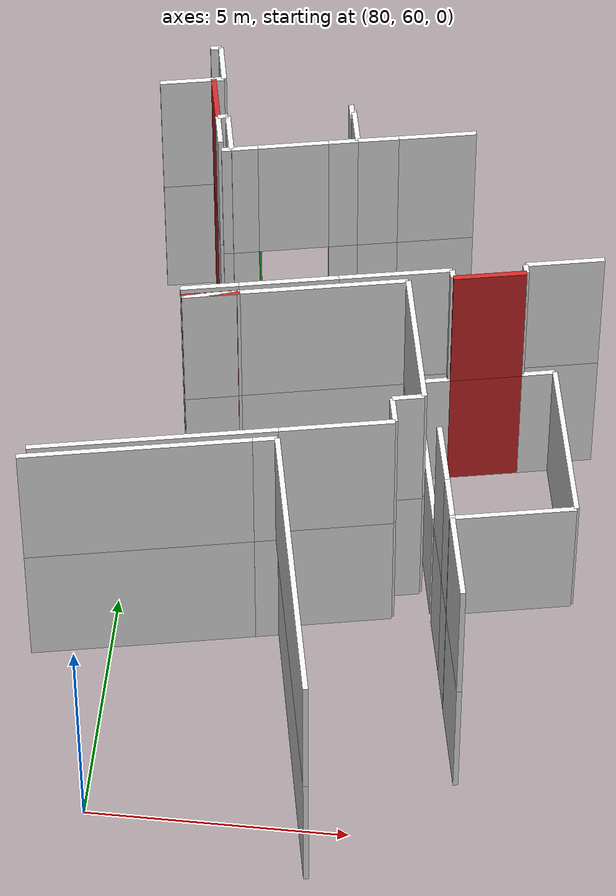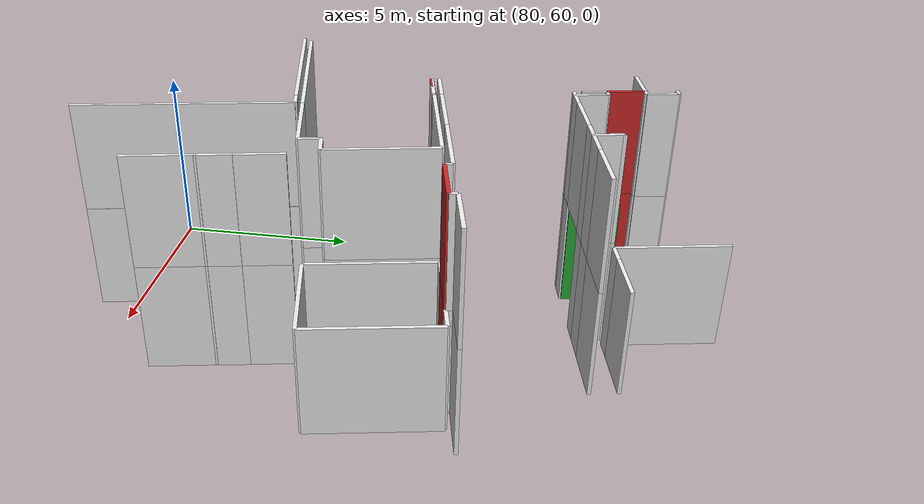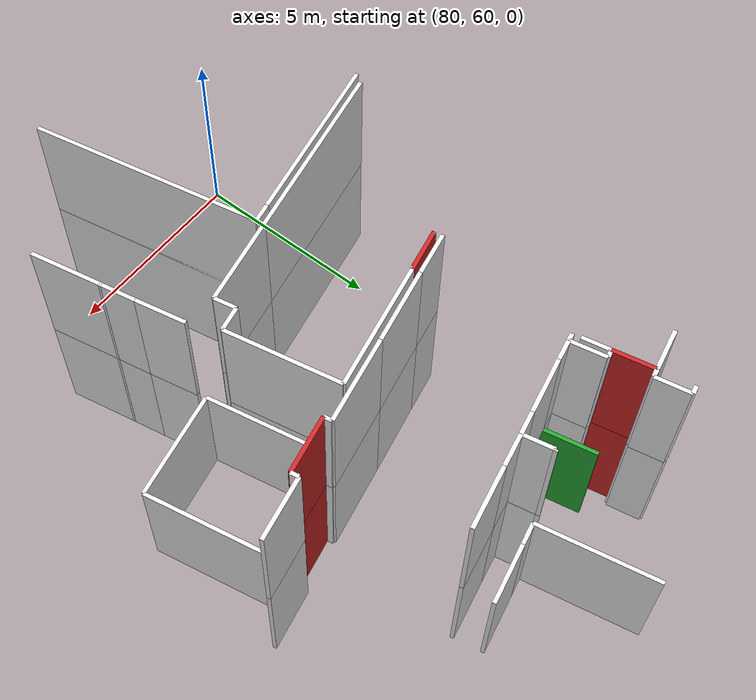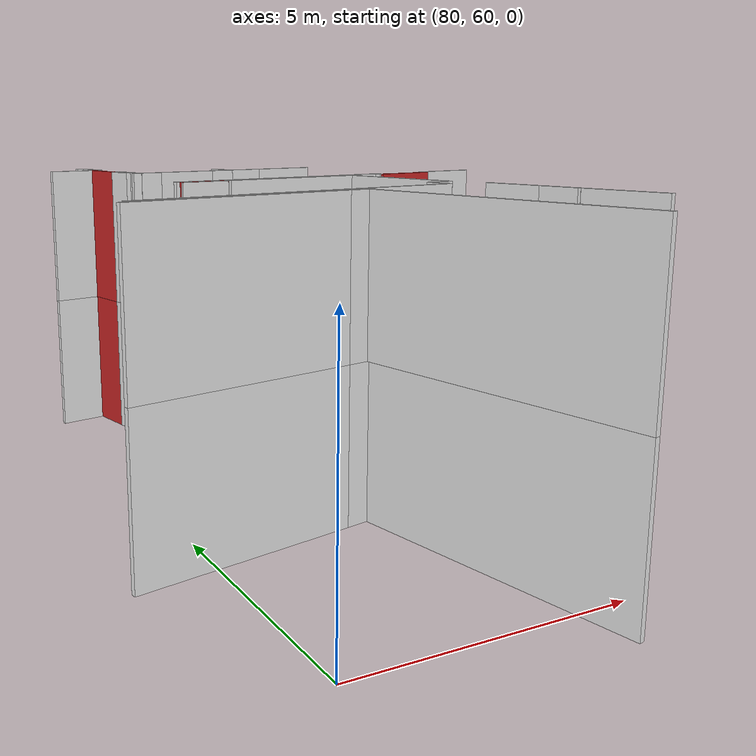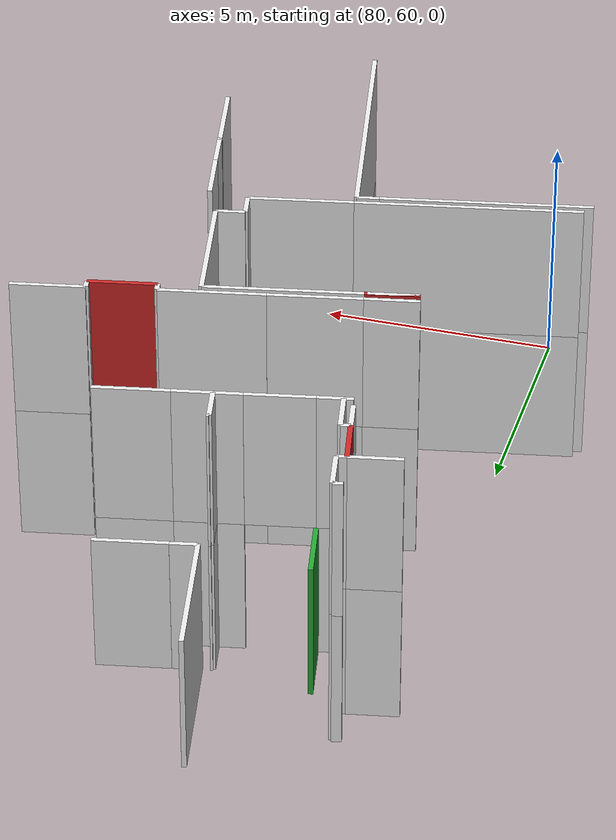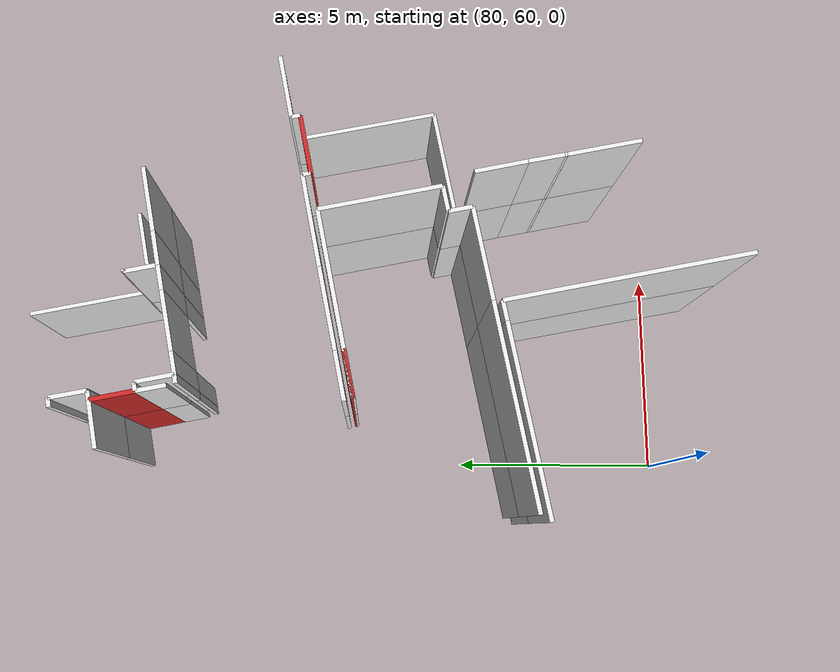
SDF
<sdf version="1.6">
 <world name="default">
  <model name="wall_81.1_72.9_1.5">
   <static>true</static>
   <pose>81.05000000001746 72.92000000015832 1.5 0 0 1.7721134351846652</pose>
   <link name="link">
    <visual name="visual">
     <geometry><box><size>1.0001999799880765 0.1 3</size></box></geometry>
     <material>
      <script><uri>file://media/materials/scripts/gazebo.material</uri><name>Gazebo/Red</name></script>
     </material>
    </visual>
    <collision name="collision"><geometry><box><size>1.0001999799880765 0.1 3</size></box></geometry></collision>
   </link>
  </model>
  <model name="wall_81.6_67.9_1.5">
   <static>true</static>
   <pose>81.55000000001746 67.88999999989755 1.5 0 0 0.2009542638673007</pose>
   <link name="link">
    <visual name="visual">
     <geometry><box><size>1.1021796587332557 0.1 3</size></box></geometry>
     <material>
      <script><uri>file://media/materials/scripts/gazebo.material</uri><name>Gazebo/Red</name></script>
     </material>
    </visual>
    <collision name="collision"><geometry><box><size>1.1021796587332557 0.1 3</size></box></geometry></collision>
   </link>
  </model>
  <model name="wall_86.7_68.9_1.5">
   <static>true</static>
   <pose>86.74499999999534 68.91499999980442 1.5 0 0 0.194586578487565</pose>
   <link name="link">
    <visual name="visual">
     <geometry><box><size>1.3963523910522369 0.1 3</size></box></geometry>
     <material>
      <script><uri>file://media/materials/scripts/gazebo.material</uri><name>Gazebo/Red</name></script>
     </material>
    </visual>
    <collision name="collision"><geometry><box><size>1.3963523910522369 0.1 3</size></box></geometry></collision>
   </link>
  </model>
  <model name="wall_81.9_72.4_1.5">
   <static>true</static>
   <pose>81.875 72.38500000000931 1.5 0 0 1.7681918866447774</pose>
   <link name="link">
    <visual name="visual">
     <geometry><box><size>1.3767352687650285 0.1 3</size></box></geometry>
     <material>
      <script><uri>file://media/materials/scripts/gazebo.material</uri><name>Gazebo/Green</name></script>
     </material>
    </visual>
    <collision name="collision"><geometry><box><size>1.3767352687650285 0.1 3</size></box></geometry></collision>
   </link>
  </model>
  <model name="wall_81.1_72.9_4.5">
   <static>true</static>
   <pose>81.05000000001746 72.92000000015832 4.5 0 0 1.7721134351846652</pose>
   <link name="link">
    <visual name="visual">
     <geometry><box><size>1.0001999799880765 0.1 3</size></box></geometry>
     <material>
      <script><uri>file://media/materials/scripts/gazebo.material</uri><name>Gazebo/Red</name></script>
     </material>
    </visual>
    <collision name="collision"><geometry><box><size>1.0001999799880765 0.1 3</size></box></geometry></collision>
   </link>
  </model>
  <model name="wall_81.6_67.9_4.5">
   <static>true</static>
   <pose>81.55000000001746 67.88999999989755 4.5 0 0 0.2009542638673007</pose>
   <link name="link">
    <visual name="visual">
     <geometry><box><size>1.1021796587332557 0.1 3</size></box></geometry>
     <material>
      <script><uri>file://media/materials/scripts/gazebo.material</uri><name>Gazebo/Red</name></script>
     </material>
    </visual>
    <collision name="collision"><geometry><box><size>1.1021796587332557 0.1 3</size></box></geometry></collision>
   </link>
  </model>
  <model name="wall_86.7_68.9_4.5">
   <static>true</static>
   <pose>86.74499999999534 68.91499999980442 4.5 0 0 0.194586578487565</pose>
   <link name="link">
    <visual name="visual">
     <geometry><box><size>1.3963523910522369 0.1 3</size></box></geometry>
     <material>
      <script><uri>file://media/materials/scripts/gazebo.material</uri><name>Gazebo/Red</name></script>
     </material>
    </visual>
    <collision name="collision"><geometry><box><size>1.3963523910522369 0.1 3</size></box></geometry></collision>
   </link>
  </model>
  <model name="wall_81.2_72.1_1.5">
   <static>true</static>
   <pose>81.21500000002561 72.10000000009313 1.5 0 0 1.7652764429739842</pose>
   <link name="link">
    <visual name="visual">
     <geometry><box><size>0.6726812025007879 0.1 3</size></box></geometry>
     <material>
      <script><uri>file://media/materials/scripts/gazebo.material</uri><name>Gazebo/White</name></script>
     </material>
    </visual>
    <collision name="collision"><geometry><box><size>0.6726812025007879 0.1 3</size></box></geometry></collision>
   </link>
  </model>
  <model name="wall_80.4_73.3_1.5">
   <static>true</static>
   <pose>80.43499999999767 73.31000000005588 1.5 0 0 -2.949804511433895</pose>
   <link name="link">
    <visual name="visual">
     <geometry><box><size>1.049237818672231 0.1 3</size></box></geometry>
     <material>
      <script><uri>file://media/materials/scripts/gazebo.material</uri><name>Gazebo/White</name></script>
     </material>
    </visual>
    <collision name="collision"><geometry><box><size>1.049237818672231 0.1 3</size></box></geometry></collision>
   </link>
  </model>
  <model name="wall_80.9_64.3_1.5">
   <static>true</static>
   <pose>80.89999999999418 64.30999999982305 1.5 0 0 0.19486391966931105</pose>
   <link name="link">
    <visual name="visual">
     <geometry><box><size>4.647967297627117 0.1 3</size></box></geometry>
     <material>
      <script><uri>file://media/materials/scripts/gazebo.material</uri><name>Gazebo/White</name></script>
     </material>
    </visual>
    <collision name="collision"><geometry><box><size>4.647967297627117 0.1 3</size></box></geometry></collision>
   </link>
  </model>
  <model name="wall_84.2_65.0_1.5">
   <static>true</static>
   <pose>84.23999999999069 64.96999999997206 1.5 0 0 0.1955806799877843</pose>
   <link name="link">
    <visual name="visual">
     <geometry><box><size>2.1612033685678047 0.1 3</size></box></geometry>
     <material>
      <script><uri>file://media/materials/scripts/gazebo.material</uri><name>Gazebo/White</name></script>
     </material>
    </visual>
    <collision name="collision"><geometry><box><size>2.1612033685678047 0.1 3</size></box></geometry></collision>
   </link>
  </model>
  <model name="wall_85.2_65.5_1.5">
   <static>true</static>
   <pose>85.24499999999534 65.45000000018626 1.5 0 0 1.7717505904446613</pose>
   <link name="link">
    <visual name="visual">
     <geometry><box><size>0.551089829371909 0.1 3</size></box></geometry>
     <material>
      <script><uri>file://media/materials/scripts/gazebo.material</uri><name>Gazebo/White</name></script>
     </material>
    </visual>
    <collision name="collision"><geometry><box><size>0.551089829371909 0.1 3</size></box></geometry></collision>
   </link>
  </model>
  <model name="wall_85.5_65.8_1.5">
   <static>true</static>
   <pose>85.48500000001513 65.78000000002794 1.5 0 0 0.20065287673540141</pose>
   <link name="link">
    <visual name="visual">
     <geometry><box><size>0.6020797288941763 0.1 3</size></box></geometry>
     <material>
      <script><uri>file://media/materials/scripts/gazebo.material</uri><name>Gazebo/White</name></script>
     </material>
    </visual>
    <collision name="collision"><geometry><box><size>0.6020797288941763 0.1 3</size></box></geometry></collision>
   </link>
  </model>
  <model name="wall_85.5_67.2_1.5">
   <static>true</static>
   <pose>85.5 67.22999999998137 1.5 0 0 1.7695750116283997</pose>
   <link name="link">
    <visual name="visual">
     <geometry><box><size>2.835842026896503 0.1 3</size></box></geometry>
     <material>
      <script><uri>file://media/materials/scripts/gazebo.material</uri><name>Gazebo/White</name></script>
     </material>
    </visual>
    <collision name="collision"><geometry><box><size>2.835842026896503 0.1 3</size></box></geometry></collision>
   </link>
  </model>
  <model name="wall_83.7_68.3_1.5">
   <static>true</static>
   <pose>83.65499999999884 68.31000000005588 1.5 0 0 -2.9460409760625255</pose>
   <link name="link">
    <visual name="visual">
     <geometry><box><size>3.190814942895208 0.1 3</size></box></geometry>
     <material>
      <script><uri>file://media/materials/scripts/gazebo.material</uri><name>Gazebo/White</name></script>
     </material>
    </visual>
    <collision name="collision"><geometry><box><size>3.190814942895208 0.1 3</size></box></geometry></collision>
   </link>
  </model>
  <model name="wall_82.1_68.0_1.5">
   <static>true</static>
   <pose>82.06000000002678 67.98999999999069 1.5 0 0 -2.8198420989021127</pose>
   <link name="link">
    <visual name="visual">
     <geometry><box><size>0.06324555320704896 0.1 3</size></box></geometry>
     <material>
      <script><uri>file://media/materials/scripts/gazebo.material</uri><name>Gazebo/White</name></script>
     </material>
    </visual>
    <collision name="collision"><geometry><box><size>0.06324555320704896 0.1 3</size></box></geometry></collision>
   </link>
  </model>
  <model name="wall_81.5_67.9_1.5">
   <static>true</static>
   <pose>81.52000000001863 67.87999999988824 1.5 0 0 -2.9479706605614444</pose>
   <link name="link">
    <visual name="visual">
     <geometry><box><size>1.039422916869021 0.1 3</size></box></geometry>
     <material>
      <script><uri>file://media/materials/scripts/gazebo.material</uri><name>Gazebo/White</name></script>
     </material>
    </visual>
    <collision name="collision"><geometry><box><size>1.039422916869021 0.1 3</size></box></geometry></collision>
   </link>
  </model>
  <model name="wall_87.8_69.1_1.5">
   <static>true</static>
   <pose>87.75 69.11499999999069 1.5 0 0 -2.9411940992371117</pose>
   <link name="link">
    <visual name="visual">
     <geometry><box><size>0.653069674774366 0.1 3</size></box></geometry>
     <material>
      <script><uri>file://media/materials/scripts/gazebo.material</uri><name>Gazebo/White</name></script>
     </material>
    </visual>
    <collision name="collision"><geometry><box><size>0.653069674774366 0.1 3</size></box></geometry></collision>
   </link>
  </model>
  <model name="wall_85.7_68.7_1.5">
   <static>true</static>
   <pose>85.73999999999069 68.71499999985099 1.5 0 0 -2.9411940999358763</pose>
   <link name="link">
    <visual name="visual">
     <geometry><box><size>0.6530696746816714 0.1 3</size></box></geometry>
     <material>
      <script><uri>file://media/materials/scripts/gazebo.material</uri><name>Gazebo/White</name></script>
     </material>
    </visual>
    <collision name="collision"><geometry><box><size>0.6530696746816714 0.1 3</size></box></geometry></collision>
   </link>
  </model>
  <model name="wall_85.8_67.0_1.5">
   <static>true</static>
   <pose>85.75 66.98999999999069 1.5 0 0 -1.374559514958863</pose>
   <link name="link">
    <visual name="visual">
     <geometry><box><size>3.384966764819104 0.1 3</size></box></geometry>
     <material>
      <script><uri>file://media/materials/scripts/gazebo.material</uri><name>Gazebo/White</name></script>
     </material>
    </visual>
    <collision name="collision"><geometry><box><size>3.384966764819104 0.1 3</size></box></geometry></collision>
   </link>
  </model>
  <model name="wall_87.4_65.6_1.5">
   <static>true</static>
   <pose>87.40499999999884 65.59000000008382 1.5 0 0 0.19376449375486982</pose>
   <link name="link">
    <visual name="visual">
     <geometry><box><size>2.70053698360794 0.1 3</size></box></geometry>
     <material>
      <script><uri>file://media/materials/scripts/gazebo.material</uri><name>Gazebo/White</name></script>
     </material>
    </visual>
    <collision name="collision"><geometry><box><size>2.70053698360794 0.1 3</size></box></geometry></collision>
   </link>
  </model>
  <model name="wall_88.4_67.5_1.5">
   <static>true</static>
   <pose>88.39999999999418 67.51500000013039 1.5 0 0 1.7664587861152812</pose>
   <link name="link">
    <visual name="visual">
     <geometry><box><size>3.394775397645977 0.1 3</size></box></geometry>
     <material>
      <script><uri>file://media/materials/scripts/gazebo.material</uri><name>Gazebo/White</name></script>
     </material>
    </visual>
    <collision name="collision"><geometry><box><size>3.394775397645977 0.1 3</size></box></geometry></collision>
   </link>
  </model>
  <model name="wall_83.7_74.3_1.5">
   <static>true</static>
   <pose>83.72500000000582 74.34000000008382 1.5 0 0 -1.3727467447894708</pose>
   <link name="link">
    <visual name="visual">
     <geometry><box><size>2.9986163475345844 0.1 3</size></box></geometry>
     <material>
      <script><uri>file://media/materials/scripts/gazebo.material</uri><name>Gazebo/White</name></script>
     </material>
    </visual>
    <collision name="collision"><geometry><box><size>2.9986163475345844 0.1 3</size></box></geometry></collision>
   </link>
  </model>
  <model name="wall_84.3_72.9_1.5">
   <static>true</static>
   <pose>84.29000000000815 72.92500000004657 1.5 0 0 0.2009542634638528</pose>
   <link name="link">
    <visual name="visual">
     <geometry><box><size>0.5510898292916356 0.1 3</size></box></geometry>
     <material>
      <script><uri>file://media/materials/scripts/gazebo.material</uri><name>Gazebo/White</name></script>
     </material>
    </visual>
    <collision name="collision"><geometry><box><size>0.5510898292916356 0.1 3</size></box></geometry></collision>
   </link>
  </model>
  <model name="wall_85.3_73.1_1.5">
   <static>true</static>
   <pose>85.2950000000128 73.125 1.5 0 0 0.19477776480304612</pose>
   <link name="link">
    <visual name="visual">
     <geometry><box><size>1.4983324064140755 0.1 3</size></box></geometry>
     <material>
      <script><uri>file://media/materials/scripts/gazebo.material</uri><name>Gazebo/White</name></script>
     </material>
    </visual>
    <collision name="collision"><geometry><box><size>1.4983324064140755 0.1 3</size></box></geometry></collision>
   </link>
  </model>
  <model name="wall_83.8_72.8_1.5">
   <static>true</static>
   <pose>83.7950000000128 72.83499999996275 1.5 0 0 -2.9441970979935492</pose>
   <link name="link">
    <visual name="visual">
     <geometry><box><size>0.050990195080677016 0.1 3</size></box></geometry>
     <material>
      <script><uri>file://media/materials/scripts/gazebo.material</uri><name>Gazebo/White</name></script>
     </material>
    </visual>
    <collision name="collision">
     <geometry><box><size>0.050990195080677016 0.1 3</size></box></geometry>
    </collision>
   </link>
  </model>
  <model name="wall_83.8_72.5_1.5">
   <static>true</static>
   <pose>83.84500000000116 72.45999999996275 1.5 0 0 -1.3708033702928581</pose>
   <link name="link">
    <visual name="visual">
     <geometry><box><size>0.7550496674526308 0.1 3</size></box></geometry>
     <material>
      <script><uri>file://media/materials/scripts/gazebo.material</uri><name>Gazebo/White</name></script>
     </material>
    </visual>
    <collision name="collision"><geometry><box><size>0.7550496674526308 0.1 3</size></box></geometry></collision>
   </link>
  </model>
  <model name="wall_83.6_72.0_1.5">
   <static>true</static>
   <pose>83.63999999998487 72.03499999991618 1.5 0 0 -2.9476335065532946</pose>
   <link name="link">
    <visual name="visual">
     <geometry><box><size>0.5707013229077953 0.1 3</size></box></geometry>
     <material>
      <script><uri>file://media/materials/scripts/gazebo.material</uri><name>Gazebo/White</name></script>
     </material>
    </visual>
    <collision name="collision"><geometry><box><size>0.5707013229077953 0.1 3</size></box></geometry></collision>
   </link>
  </model>
  <model name="wall_81.8_71.7_1.5">
   <static>true</static>
   <pose>81.76000000000931 71.65999999991618 1.5 0 0 -2.944197093560812</pose>
   <link name="link">
    <visual name="visual">
     <geometry><box><size>0.5099019513775432 0.1 3</size></box></geometry>
     <material>
      <script><uri>file://media/materials/scripts/gazebo.material</uri><name>Gazebo/White</name></script>
     </material>
    </visual>
    <collision name="collision"><geometry><box><size>0.5099019513775432 0.1 3</size></box></geometry></collision>
   </link>
  </model>
  <model name="wall_81.4_72.0_1.5">
   <static>true</static>
   <pose>81.42500000001746 72.04000000003725 1.5 0 0 1.7659547538191616</pose>
   <link name="link">
    <visual name="visual">
     <geometry><box><size>0.8766413180834757 0.1 3</size></box></geometry>
     <material>
      <script><uri>file://media/materials/scripts/gazebo.material</uri><name>Gazebo/White</name></script>
     </material>
    </visual>
    <collision name="collision"><geometry><box><size>0.8766413180834757 0.1 3</size></box></geometry></collision>
   </link>
  </model>
  <model name="wall_81.2_72.5_1.5">
   <static>true</static>
   <pose>81.24500000002445 72.45000000018626 1.5 0 0 -2.9340964269693144</pose>
   <link name="link">
    <visual name="visual">
     <geometry><box><size>0.19416487839942884 0.1 3</size></box></geometry>
     <material>
      <script><uri>file://media/materials/scripts/gazebo.material</uri><name>Gazebo/White</name></script>
     </material>
    </visual>
    <collision name="collision"><geometry><box><size>0.19416487839942884 0.1 3</size></box></geometry></collision>
   </link>
  </model>
  <model name="wall_81.1_73.4_1.5">
   <static>true</static>
   <pose>81.05000000001746 73.43000000016764 1.5 0 0 0.19739556001778746</pose>
   <link name="link">
    <visual name="visual">
     <geometry><box><size>0.20396078056243275 0.1 3</size></box></geometry>
     <material>
      <script><uri>file://media/materials/scripts/gazebo.material</uri><name>Gazebo/White</name></script>
     </material>
    </visual>
    <collision name="collision"><geometry><box><size>0.20396078056243275 0.1 3</size></box></geometry></collision>
   </link>
  </model>
  <model name="wall_81.1_73.9_1.5">
   <static>true</static>
   <pose>81.07000000000698 73.86499999999069 1.5 0 0 1.7612314423339088</pose>
   <link name="link">
    <visual name="visual">
     <geometry><box><size>0.8452810179822523 0.1 3</size></box></geometry>
     <material>
      <script><uri>file://media/materials/scripts/gazebo.material</uri><name>Gazebo/White</name></script>
     </material>
    </visual>
    <collision name="collision"><geometry><box><size>0.8452810179822523 0.1 3</size></box></geometry></collision>
   </link>
  </model>
  <model name="wall_80.9_74.3_1.5">
   <static>true</static>
   <pose>80.88999999998487 74.26000000000931 1.5 0 0 -2.944197095810762</pose>
   <link name="link">
    <visual name="visual">
     <geometry><box><size>0.20396078047110908 0.1 3</size></box></geometry>
     <material>
      <script><uri>file://media/materials/scripts/gazebo.material</uri><name>Gazebo/White</name></script>
     </material>
    </visual>
    <collision name="collision"><geometry><box><size>0.20396078047110908 0.1 3</size></box></geometry></collision>
   </link>
  </model>
  <model name="wall_86.7_62.2_1.5">
   <static>true</static>
   <pose>86.70999999999185 62.19500000006519 1.5 0 0 1.7693295426026865</pose>
   <link name="link">
    <visual name="visual">
     <geometry><box><size>1.7238619433784548 0.1 3</size></box></geometry>
     <material>
      <script><uri>file://media/materials/scripts/gazebo.material</uri><name>Gazebo/White</name></script>
     </material>
    </visual>
    <collision name="collision"><geometry><box><size>1.7238619433784548 0.1 3</size></box></geometry></collision>
   </link>
  </model>
  <model name="wall_86.5_63.1_1.5">
   <static>true</static>
   <pose>86.53500000000349 63.07000000006519 1.5 0 0 1.7359450032656154</pose>
   <link name="link">
    <visual name="visual">
     <geometry><box><size>0.06082762535006306 0.1 3</size></box></geometry>
     <material>
      <script><uri>file://media/materials/scripts/gazebo.material</uri><name>Gazebo/White</name></script>
     </material>
    </visual>
    <collision name="collision"><geometry><box><size>0.06082762535006306 0.1 3</size></box></geometry></collision>
   </link>
  </model>
  <model name="wall_86.5_63.5_1.5">
   <static>true</static>
   <pose>86.45000000001164 63.51000000000931 1.5 0 0 1.7634970855340029</pose>
   <link name="link">
    <visual name="visual">
     <geometry><box><size>0.8354639428099243 0.1 3</size></box></geometry>
     <material>
      <script><uri>file://media/materials/scripts/gazebo.material</uri><name>Gazebo/White</name></script>
     </material>
    </visual>
    <collision name="collision"><geometry><box><size>0.8354639428099243 0.1 3</size></box></geometry></collision>
   </link>
  </model>
  <model name="wall_86.2_64.5_1.5">
   <static>true</static>
   <pose>86.24499999999534 64.52499999990687 1.5 0 0 1.7745410076848542</pose>
   <link name="link">
    <visual name="visual">
     <geometry><box><size>1.2355565547193088 0.1 3</size></box></geometry>
     <material>
      <script><uri>file://media/materials/scripts/gazebo.material</uri><name>Gazebo/White</name></script>
     </material>
    </visual>
    <collision name="collision"><geometry><box><size>1.2355565547193088 0.1 3</size></box></geometry></collision>
   </link>
  </model>
  <model name="wall_88.1_69.4_1.5">
   <static>true</static>
   <pose>88.13000000000466 69.39500000001863 1.5 0 0 -2.948098244273777</pose>
   <link name="link">
    <visual name="visual">
     <geometry><box><size>1.508144555394632 0.1 3</size></box></geometry>
     <material>
      <script><uri>file://media/materials/scripts/gazebo.material</uri><name>Gazebo/White</name></script>
     </material>
    </visual>
    <collision name="collision"><geometry><box><size>1.508144555394632 0.1 3</size></box></geometry></collision>
   </link>
  </model>
  <model name="wall_87.4_69.1_1.5">
   <static>true</static>
   <pose>87.41000000000349 69.14999999990687 1.5 0 0 -1.3734007672248605</pose>
   <link name="link">
    <visual name="visual">
     <geometry><box><size>0.2039607807222492 0.1 3</size></box></geometry>
     <material>
      <script><uri>file://media/materials/scripts/gazebo.material</uri><name>Gazebo/White</name></script>
     </material>
    </visual>
    <collision name="collision"><geometry><box><size>0.2039607807222492 0.1 3</size></box></geometry></collision>
   </link>
  </model>
  <model name="wall_86.0_68.9_1.5">
   <static>true</static>
   <pose>86.04000000000815 68.875 1.5 0 0 1.7782925526897098</pose>
   <link name="link">
    <visual name="visual">
     <geometry><box><size>0.1941648787861511 0.1 3</size></box></geometry>
     <material>
      <script><uri>file://media/materials/scripts/gazebo.material</uri><name>Gazebo/White</name></script>
     </material>
    </visual>
    <collision name="collision"><geometry><box><size>0.1941648787861511 0.1 3</size></box></geometry></collision>
   </link>
  </model>
  <model name="wall_85.0_68.8_1.5">
   <static>true</static>
   <pose>84.96499999999651 68.76500000013039 1.5 0 0 -2.9496714915424067</pose>
   <link name="link">
    <visual name="visual">
     <geometry><box><size>2.1494650497993386 0.1 3</size></box></geometry>
     <material>
      <script><uri>file://media/materials/scripts/gazebo.material</uri><name>Gazebo/White</name></script>
     </material>
    </visual>
    <collision name="collision"><geometry><box><size>2.1494650497993386 0.1 3</size></box></geometry></collision>
   </link>
  </model>
  <model name="wall_83.0_68.4_1.5">
   <static>true</static>
   <pose>82.97999999998137 68.375 1.5 0 0 -2.9452312194754318</pose>
   <link name="link">
    <visual name="visual">
     <geometry><box><size>1.8964440408382035 0.1 3</size></box></geometry>
     <material>
      <script><uri>file://media/materials/scripts/gazebo.material</uri><name>Gazebo/White</name></script>
     </material>
    </visual>
    <collision name="collision"><geometry><box><size>1.8964440408382035 0.1 3</size></box></geometry></collision>
   </link>
  </model>
  <model name="wall_81.5_68.1_1.5">
   <static>true</static>
   <pose>81.50500000000466 68.08499999996275 1.5 0 0 -2.9512641139252844</pose>
   <link name="link">
    <visual name="visual">
     <geometry><box><size>1.1100450440920377 0.1 3</size></box></geometry>
     <material>
      <script><uri>file://media/materials/scripts/gazebo.material</uri><name>Gazebo/White</name></script>
     </material>
    </visual>
    <collision name="collision"><geometry><box><size>1.1100450440920377 0.1 3</size></box></geometry></collision>
   </link>
  </model>
  <model name="wall_81.4_71.6_1.5">
   <static>true</static>
   <pose>81.41500000000815 71.59499999997206 1.5 0 0 0.15660187592798475</pose>
   <link name="link">
    <visual name="visual">
     <geometry><box><size>0.19235384058705793 0.1 3</size></box></geometry>
     <material>
      <script><uri>file://media/materials/scripts/gazebo.material</uri><name>Gazebo/White</name></script>
     </material>
    </visual>
    <collision name="collision"><geometry><box><size>0.19235384058705793 0.1 3</size></box></geometry></collision>
   </link>
  </model>
  <model name="wall_84.3_72.2_1.5">
   <static>true</static>
   <pose>84.30999999999767 72.16500000003725 1.5 0 0 0.18998828837264137</pose>
   <link name="link">
    <visual name="visual">
     <geometry><box><size>0.7942921377902116 0.1 3</size></box></geometry>
     <material>
      <script><uri>file://media/materials/scripts/gazebo.material</uri><name>Gazebo/White</name></script>
     </material>
    </visual>
    <collision name="collision"><geometry><box><size>0.7942921377902116 0.1 3</size></box></geometry></collision>
   </link>
  </model>
  <model name="wall_85.4_72.4_1.5">
   <static>true</static>
   <pose>85.44000000000233 72.38500000000931 1.5 0 0 0.19349440901301387</pose>
   <link name="link">
    <visual name="visual">
     <geometry><box><size>1.5081445553050903 0.1 3</size></box></geometry>
     <material>
      <script><uri>file://media/materials/scripts/gazebo.material</uri><name>Gazebo/White</name></script>
     </material>
    </visual>
    <collision name="collision"><geometry><box><size>1.5081445553050903 0.1 3</size></box></geometry></collision>
   </link>
  </model>
  <model name="wall_80.6_64.1_1.5">
   <static>true</static>
   <pose>80.59999999997672 64.05000000004657 1.5 0 0 0.19468553945508393</pose>
   <link name="link">
    <visual name="visual">
     <geometry><box><size>4.342027176401746 0.1 3</size></box></geometry>
     <material>
      <script><uri>file://media/materials/scripts/gazebo.material</uri><name>Gazebo/White</name></script>
     </material>
    </visual>
    <collision name="collision"><geometry><box><size>4.342027176401746 0.1 3</size></box></geometry></collision>
   </link>
  </model>
  <model name="wall_83.0_64.5_1.5">
   <static>true</static>
   <pose>82.9549999999872 64.51500000013039 1.5 0 0 0.19739555952650487</pose>
   <link name="link">
    <visual name="visual">
     <geometry><box><size>0.45891175620554253 0.1 3</size></box></geometry>
     <material>
      <script><uri>file://media/materials/scripts/gazebo.material</uri><name>Gazebo/White</name></script>
     </material>
    </visual>
    <collision name="collision"><geometry><box><size>0.45891175620554253 0.1 3</size></box></geometry></collision>
   </link>
  </model>
  <model name="wall_83.7_61.9_1.5">
   <static>true</static>
   <pose>83.73999999999069 61.85499999998137 1.5 0 0 1.761231442220787</pose>
   <link name="link">
    <visual name="visual">
     <geometry><box><size>5.91696712811791 0.1 3</size></box></geometry>
     <material>
      <script><uri>file://media/materials/scripts/gazebo.material</uri><name>Gazebo/White</name></script>
     </material>
    </visual>
    <collision name="collision"><geometry><box><size>5.91696712811791 0.1 3</size></box></geometry></collision>
   </link>
  </model>
  <model name="wall_81.2_72.1_4.5">
   <static>true</static>
   <pose>81.21500000002561 72.10000000009313 4.5 0 0 1.7652764429739842</pose>
   <link name="link">
    <visual name="visual">
     <geometry><box><size>0.6726812025007879 0.1 3</size></box></geometry>
     <material>
      <script><uri>file://media/materials/scripts/gazebo.material</uri><name>Gazebo/White</name></script>
     </material>
    </visual>
    <collision name="collision"><geometry><box><size>0.6726812025007879 0.1 3</size></box></geometry></collision>
   </link>
  </model>
  <model name="wall_80.4_73.3_4.5">
   <static>true</static>
   <pose>80.43499999999767 73.31000000005588 4.5 0 0 -2.949804511433895</pose>
   <link name="link">
    <visual name="visual">
     <geometry><box><size>1.049237818672231 0.1 3</size></box></geometry>
     <material>
      <script><uri>file://media/materials/scripts/gazebo.material</uri><name>Gazebo/White</name></script>
     </material>
    </visual>
    <collision name="collision"><geometry><box><size>1.049237818672231 0.1 3</size></box></geometry></collision>
   </link>
  </model>
  <model name="wall_80.9_64.3_4.5">
   <static>true</static>
   <pose>80.89999999999418 64.30999999982305 4.5 0 0 0.19486391966931105</pose>
   <link name="link">
    <visual name="visual">
     <geometry><box><size>4.647967297627117 0.1 3</size></box></geometry>
     <material>
      <script><uri>file://media/materials/scripts/gazebo.material</uri><name>Gazebo/White</name></script>
     </material>
    </visual>
    <collision name="collision"><geometry><box><size>4.647967297627117 0.1 3</size></box></geometry></collision>
   </link>
  </model>
  <model name="wall_84.2_65.0_4.5">
   <static>true</static>
   <pose>84.23999999999069 64.96999999997206 4.5 0 0 0.1955806799877843</pose>
   <link name="link">
    <visual name="visual">
     <geometry><box><size>2.1612033685678047 0.1 3</size></box></geometry>
     <material>
      <script><uri>file://media/materials/scripts/gazebo.material</uri><name>Gazebo/White</name></script>
     </material>
    </visual>
    <collision name="collision"><geometry><box><size>2.1612033685678047 0.1 3</size></box></geometry></collision>
   </link>
  </model>
  <model name="wall_85.2_65.5_4.5">
   <static>true</static>
   <pose>85.24499999999534 65.45000000018626 4.5 0 0 1.7717505904446613</pose>
   <link name="link">
    <visual name="visual">
     <geometry><box><size>0.551089829371909 0.1 3</size></box></geometry>
     <material>
      <script><uri>file://media/materials/scripts/gazebo.material</uri><name>Gazebo/White</name></script>
     </material>
    </visual>
    <collision name="collision"><geometry><box><size>0.551089829371909 0.1 3</size></box></geometry></collision>
   </link>
  </model>
  <model name="wall_85.5_65.8_4.5">
   <static>true</static>
   <pose>85.48500000001513 65.78000000002794 4.5 0 0 0.20065287673540141</pose>
   <link name="link">
    <visual name="visual">
     <geometry><box><size>0.6020797288941763 0.1 3</size></box></geometry>
     <material>
      <script><uri>file://media/materials/scripts/gazebo.material</uri><name>Gazebo/White</name></script>
     </material>
    </visual>
    <collision name="collision"><geometry><box><size>0.6020797288941763 0.1 3</size></box></geometry></collision>
   </link>
  </model>
  <model name="wall_85.5_67.2_4.5">
   <static>true</static>
   <pose>85.5 67.22999999998137 4.5 0 0 1.7695750116283997</pose>
   <link name="link">
    <visual name="visual">
     <geometry><box><size>2.835842026896503 0.1 3</size></box></geometry>
     <material>
      <script><uri>file://media/materials/scripts/gazebo.material</uri><name>Gazebo/White</name></script>
     </material>
    </visual>
    <collision name="collision"><geometry><box><size>2.835842026896503 0.1 3</size></box></geometry></collision>
   </link>
  </model>
  <model name="wall_83.7_68.3_4.5">
   <static>true</static>
   <pose>83.65499999999884 68.31000000005588 4.5 0 0 -2.9460409760625255</pose>
   <link name="link">
    <visual name="visual">
     <geometry><box><size>3.190814942895208 0.1 3</size></box></geometry>
     <material>
      <script><uri>file://media/materials/scripts/gazebo.material</uri><name>Gazebo/White</name></script>
     </material>
    </visual>
    <collision name="collision"><geometry><box><size>3.190814942895208 0.1 3</size></box></geometry></collision>
   </link>
  </model>
  <model name="wall_82.1_68.0_4.5">
   <static>true</static>
   <pose>82.06000000002678 67.98999999999069 4.5 0 0 -2.8198420989021127</pose>
   <link name="link">
    <visual name="visual">
     <geometry><box><size>0.06324555320704896 0.1 3</size></box></geometry>
     <material>
      <script><uri>file://media/materials/scripts/gazebo.material</uri><name>Gazebo/White</name></script>
     </material>
    </visual>
    <collision name="collision"><geometry><box><size>0.06324555320704896 0.1 3</size></box></geometry></collision>
   </link>
  </model>
  <model name="wall_81.5_67.9_4.5">
   <static>true</static>
   <pose>81.52000000001863 67.87999999988824 4.5 0 0 -2.9479706605614444</pose>
   <link name="link">
    <visual name="visual">
     <geometry><box><size>1.039422916869021 0.1 3</size></box></geometry>
     <material>
      <script><uri>file://media/materials/scripts/gazebo.material</uri><name>Gazebo/White</name></script>
     </material>
    </visual>
    <collision name="collision"><geometry><box><size>1.039422916869021 0.1 3</size></box></geometry></collision>
   </link>
  </model>
  <model name="wall_83.8_72.8_4.5">
   <static>true</static>
   <pose>83.7950000000128 72.83499999996275 4.5 0 0 -2.9441970979935492</pose>
   <link name="link">
    <visual name="visual">
     <geometry><box><size>0.050990195080677016 0.1 3</size></box></geometry>
     <material>
      <script><uri>file://media/materials/scripts/gazebo.material</uri><name>Gazebo/White</name></script>
     </material>
    </visual>
    <collision name="collision">
     <geometry><box><size>0.050990195080677016 0.1 3</size></box></geometry>
    </collision>
   </link>
  </model>
  <model name="wall_83.8_72.5_4.5">
   <static>true</static>
   <pose>83.84500000000116 72.45999999996275 4.5 0 0 -1.3708033702928581</pose>
   <link name="link">
    <visual name="visual">
     <geometry><box><size>0.7550496674526308 0.1 3</size></box></geometry>
     <material>
      <script><uri>file://media/materials/scripts/gazebo.material</uri><name>Gazebo/White</name></script>
     </material>
    </visual>
    <collision name="collision"><geometry><box><size>0.7550496674526308 0.1 3</size></box></geometry></collision>
   </link>
  </model>
  <model name="wall_83.6_72.0_4.5">
   <static>true</static>
   <pose>83.63999999998487 72.03499999991618 4.5 0 0 -2.9476335065532946</pose>
   <link name="link">
    <visual name="visual">
     <geometry><box><size>0.5707013229077953 0.1 3</size></box></geometry>
     <material>
      <script><uri>file://media/materials/scripts/gazebo.material</uri><name>Gazebo/White</name></script>
     </material>
    </visual>
    <collision name="collision"><geometry><box><size>0.5707013229077953 0.1 3</size></box></geometry></collision>
   </link>
  </model>
  <model name="wall_82.7_71.8_4.5">
   <static>true</static>
   <pose>82.68499999999767 71.84499999997206 4.5 0 0 -2.944197093723329</pose>
   <link name="link">
    <visual name="visual">
     <geometry><box><size>1.3767352686508738 0.1 3</size></box></geometry>
     <material>
      <script><uri>file://media/materials/scripts/gazebo.material</uri><name>Gazebo/White</name></script>
     </material>
    </visual>
    <collision name="collision"><geometry><box><size>1.3767352686508738 0.1 3</size></box></geometry></collision>
   </link>
  </model>
  <model name="wall_81.8_71.7_4.5">
   <static>true</static>
   <pose>81.76000000000931 71.65999999991618 4.5 0 0 -2.944197093560812</pose>
   <link name="link">
    <visual name="visual">
     <geometry><box><size>0.5099019513775432 0.1 3</size></box></geometry>
     <material>
      <script><uri>file://media/materials/scripts/gazebo.material</uri><name>Gazebo/White</name></script>
     </material>
    </visual>
    <collision name="collision"><geometry><box><size>0.5099019513775432 0.1 3</size></box></geometry></collision>
   </link>
  </model>
  <model name="wall_81.4_72.0_4.5">
   <static>true</static>
   <pose>81.42500000001746 72.04000000003725 4.5 0 0 1.7659547538191616</pose>
   <link name="link">
    <visual name="visual">
     <geometry><box><size>0.8766413180834757 0.1 3</size></box></geometry>
     <material>
      <script><uri>file://media/materials/scripts/gazebo.material</uri><name>Gazebo/White</name></script>
     </material>
    </visual>
    <collision name="collision"><geometry><box><size>0.8766413180834757 0.1 3</size></box></geometry></collision>
   </link>
  </model>
  <model name="wall_81.2_72.5_4.5">
   <static>true</static>
   <pose>81.24500000002445 72.45000000018626 4.5 0 0 -2.9340964269693144</pose>
   <link name="link">
    <visual name="visual">
     <geometry><box><size>0.19416487839942884 0.1 3</size></box></geometry>
     <material>
      <script><uri>file://media/materials/scripts/gazebo.material</uri><name>Gazebo/White</name></script>
     </material>
    </visual>
    <collision name="collision"><geometry><box><size>0.19416487839942884 0.1 3</size></box></geometry></collision>
   </link>
  </model>
  <model name="wall_81.1_73.4_4.5">
   <static>true</static>
   <pose>81.05000000001746 73.43000000016764 4.5 0 0 0.19739556001778746</pose>
   <link name="link">
    <visual name="visual">
     <geometry><box><size>0.20396078056243275 0.1 3</size></box></geometry>
     <material>
      <script><uri>file://media/materials/scripts/gazebo.material</uri><name>Gazebo/White</name></script>
     </material>
    </visual>
    <collision name="collision"><geometry><box><size>0.20396078056243275 0.1 3</size></box></geometry></collision>
   </link>
  </model>
  <model name="wall_81.1_73.9_4.5">
   <static>true</static>
   <pose>81.07000000000698 73.86499999999069 4.5 0 0 1.7612314423339088</pose>
   <link name="link">
    <visual name="visual">
     <geometry><box><size>0.8452810179822523 0.1 3</size></box></geometry>
     <material>
      <script><uri>file://media/materials/scripts/gazebo.material</uri><name>Gazebo/White</name></script>
     </material>
    </visual>
    <collision name="collision"><geometry><box><size>0.8452810179822523 0.1 3</size></box></geometry></collision>
   </link>
  </model>
  <model name="wall_80.9_74.3_4.5">
   <static>true</static>
   <pose>80.88999999998487 74.26000000000931 4.5 0 0 -2.944197095810762</pose>
   <link name="link">
    <visual name="visual">
     <geometry><box><size>0.20396078047110908 0.1 3</size></box></geometry>
     <material>
      <script><uri>file://media/materials/scripts/gazebo.material</uri><name>Gazebo/White</name></script>
     </material>
    </visual>
    <collision name="collision"><geometry><box><size>0.20396078047110908 0.1 3</size></box></geometry></collision>
   </link>
  </model>
  <model name="wall_86.7_62.2_4.5">
   <static>true</static>
   <pose>86.70999999999185 62.19500000006519 4.5 0 0 1.7693295426026865</pose>
   <link name="link">
    <visual name="visual">
     <geometry><box><size>1.7238619433784548 0.1 3</size></box></geometry>
     <material>
      <script><uri>file://media/materials/scripts/gazebo.material</uri><name>Gazebo/White</name></script>
     </material>
    </visual>
    <collision name="collision"><geometry><box><size>1.7238619433784548 0.1 3</size></box></geometry></collision>
   </link>
  </model>
  <model name="wall_86.5_63.1_4.5">
   <static>true</static>
   <pose>86.53500000000349 63.07000000006519 4.5 0 0 1.7359450032656154</pose>
   <link name="link">
    <visual name="visual">
     <geometry><box><size>0.06082762535006306 0.1 3</size></box></geometry>
     <material>
      <script><uri>file://media/materials/scripts/gazebo.material</uri><name>Gazebo/White</name></script>
     </material>
    </visual>
    <collision name="collision"><geometry><box><size>0.06082762535006306 0.1 3</size></box></geometry></collision>
   </link>
  </model>
  <model name="wall_86.5_63.5_4.5">
   <static>true</static>
   <pose>86.45000000001164 63.51000000000931 4.5 0 0 1.7634970855340029</pose>
   <link name="link">
    <visual name="visual">
     <geometry><box><size>0.8354639428099243 0.1 3</size></box></geometry>
     <material>
      <script><uri>file://media/materials/scripts/gazebo.material</uri><name>Gazebo/White</name></script>
     </material>
    </visual>
    <collision name="collision"><geometry><box><size>0.8354639428099243 0.1 3</size></box></geometry></collision>
   </link>
  </model>
  <model name="wall_86.2_64.5_4.5">
   <static>true</static>
   <pose>86.24499999999534 64.52499999990687 4.5 0 0 1.7745410076848542</pose>
   <link name="link">
    <visual name="visual">
     <geometry><box><size>1.2355565547193088 0.1 3</size></box></geometry>
     <material>
      <script><uri>file://media/materials/scripts/gazebo.material</uri><name>Gazebo/White</name></script>
     </material>
    </visual>
    <collision name="collision"><geometry><box><size>1.2355565547193088 0.1 3</size></box></geometry></collision>
   </link>
  </model>
  <model name="wall_88.1_69.4_4.5">
   <static>true</static>
   <pose>88.13000000000466 69.39500000001863 4.5 0 0 -2.948098244273777</pose>
   <link name="link">
    <visual name="visual">
     <geometry><box><size>1.508144555394632 0.1 3</size></box></geometry>
     <material>
      <script><uri>file://media/materials/scripts/gazebo.material</uri><name>Gazebo/White</name></script>
     </material>
    </visual>
    <collision name="collision"><geometry><box><size>1.508144555394632 0.1 3</size></box></geometry></collision>
   </link>
  </model>
  <model name="wall_87.4_69.1_4.5">
   <static>true</static>
   <pose>87.41000000000349 69.14999999990687 4.5 0 0 -1.3734007672248605</pose>
   <link name="link">
    <visual name="visual">
     <geometry><box><size>0.2039607807222492 0.1 3</size></box></geometry>
     <material>
      <script><uri>file://media/materials/scripts/gazebo.material</uri><name>Gazebo/White</name></script>
     </material>
    </visual>
    <collision name="collision"><geometry><box><size>0.2039607807222492 0.1 3</size></box></geometry></collision>
   </link>
  </model>
  <model name="wall_86.0_68.9_4.5">
   <static>true</static>
   <pose>86.04000000000815 68.875 4.5 0 0 1.7782925526897098</pose>
   <link name="link">
    <visual name="visual">
     <geometry><box><size>0.1941648787861511 0.1 3</size></box></geometry>
     <material>
      <script><uri>file://media/materials/scripts/gazebo.material</uri><name>Gazebo/White</name></script>
     </material>
    </visual>
    <collision name="collision"><geometry><box><size>0.1941648787861511 0.1 3</size></box></geometry></collision>
   </link>
  </model>
  <model name="wall_85.0_68.8_4.5">
   <static>true</static>
   <pose>84.96499999999651 68.76500000013039 4.5 0 0 -2.9496714915424067</pose>
   <link name="link">
    <visual name="visual">
     <geometry><box><size>2.1494650497993386 0.1 3</size></box></geometry>
     <material>
      <script><uri>file://media/materials/scripts/gazebo.material</uri><name>Gazebo/White</name></script>
     </material>
    </visual>
    <collision name="collision"><geometry><box><size>2.1494650497993386 0.1 3</size></box></geometry></collision>
   </link>
  </model>
  <model name="wall_83.0_68.4_4.5">
   <static>true</static>
   <pose>82.97999999998137 68.375 4.5 0 0 -2.9452312194754318</pose>
   <link name="link">
    <visual name="visual">
     <geometry><box><size>1.8964440408382035 0.1 3</size></box></geometry>
     <material>
      <script><uri>file://media/materials/scripts/gazebo.material</uri><name>Gazebo/White</name></script>
     </material>
    </visual>
    <collision name="collision"><geometry><box><size>1.8964440408382035 0.1 3</size></box></geometry></collision>
   </link>
  </model>
  <model name="wall_81.5_68.1_4.5">
   <static>true</static>
   <pose>81.50500000000466 68.08499999996275 4.5 0 0 -2.9512641139252844</pose>
   <link name="link">
    <visual name="visual">
     <geometry><box><size>1.1100450440920377 0.1 3</size></box></geometry>
     <material>
      <script><uri>file://media/materials/scripts/gazebo.material</uri><name>Gazebo/White</name></script>
     </material>
    </visual>
    <collision name="collision"><geometry><box><size>1.1100450440920377 0.1 3</size></box></geometry></collision>
   </link>
  </model>
  <model name="wall_81.4_71.6_4.5">
   <static>true</static>
   <pose>81.41500000000815 71.59499999997206 4.5 0 0 0.15660187592798475</pose>
   <link name="link">
    <visual name="visual">
     <geometry><box><size>0.19235384058705793 0.1 3</size></box></geometry>
     <material>
      <script><uri>file://media/materials/scripts/gazebo.material</uri><name>Gazebo/White</name></script>
     </material>
    </visual>
    <collision name="collision"><geometry><box><size>0.19235384058705793 0.1 3</size></box></geometry></collision>
   </link>
  </model>
  <model name="wall_84.3_72.2_4.5">
   <static>true</static>
   <pose>84.30999999999767 72.16500000003725 4.5 0 0 0.18998828837264137</pose>
   <link name="link">
    <visual name="visual">
     <geometry><box><size>0.7942921377902116 0.1 3</size></box></geometry>
     <material>
      <script><uri>file://media/materials/scripts/gazebo.material</uri><name>Gazebo/White</name></script>
     </material>
    </visual>
    <collision name="collision"><geometry><box><size>0.7942921377902116 0.1 3</size></box></geometry></collision>
   </link>
  </model>
  <model name="wall_85.4_72.4_4.5">
   <static>true</static>
   <pose>85.44000000000233 72.38500000000931 4.5 0 0 0.19349440901301387</pose>
   <link name="link">
    <visual name="visual">
     <geometry><box><size>1.5081445553050903 0.1 3</size></box></geometry>
     <material>
      <script><uri>file://media/materials/scripts/gazebo.material</uri><name>Gazebo/White</name></script>
     </material>
    </visual>
    <collision name="collision"><geometry><box><size>1.5081445553050903 0.1 3</size></box></geometry></collision>
   </link>
  </model>
  <model name="wall_80.6_64.1_4.5">
   <static>true</static>
   <pose>80.59999999997672 64.05000000004657 4.5 0 0 0.19468553945508393</pose>
   <link name="link">
    <visual name="visual">
     <geometry><box><size>4.342027176401746 0.1 3</size></box></geometry>
     <material>
      <script><uri>file://media/materials/scripts/gazebo.material</uri><name>Gazebo/White</name></script>
     </material>
    </visual>
    <collision name="collision"><geometry><box><size>4.342027176401746 0.1 3</size></box></geometry></collision>
   </link>
  </model>
  <model name="wall_83.0_64.5_4.5">
   <static>true</static>
   <pose>82.9549999999872 64.51500000013039 4.5 0 0 0.19739555952650487</pose>
   <link name="link">
    <visual name="visual">
     <geometry><box><size>0.45891175620554253 0.1 3</size></box></geometry>
     <material>
      <script><uri>file://media/materials/scripts/gazebo.material</uri><name>Gazebo/White</name></script>
     </material>
    </visual>
    <collision name="collision"><geometry><box><size>0.45891175620554253 0.1 3</size></box></geometry></collision>
   </link>
  </model>
  <model name="wall_83.7_61.8_4.5">
   <static>true</static>
   <pose>83.73999999999069 61.75500000012107 4.5 0 0 -1.3737435848915833</pose>
   <link name="link">
    <visual name="visual">
     <geometry><box><size>5.720707998012715 0.1 3</size></box></geometry>
     <material>
      <script><uri>file://media/materials/scripts/gazebo.material</uri><name>Gazebo/White</name></script>
     </material>
    </visual>
    <collision name="collision"><geometry><box><size>5.720707998012715 0.1 3</size></box></geometry></collision>
   </link>
  </model>
 </world>
</sdf>
